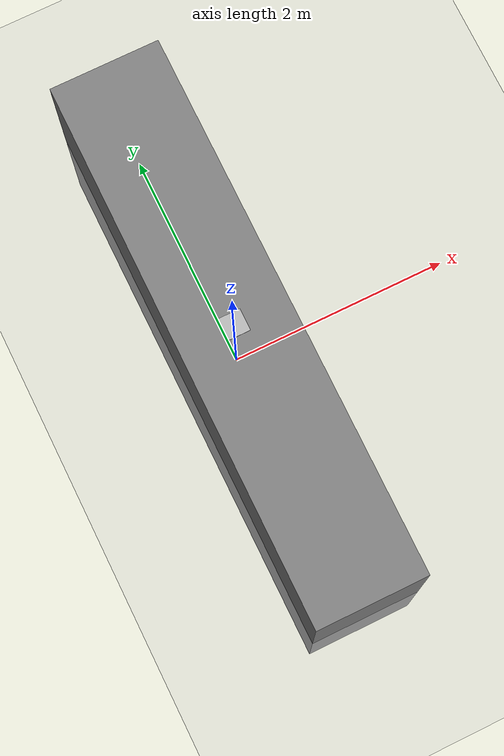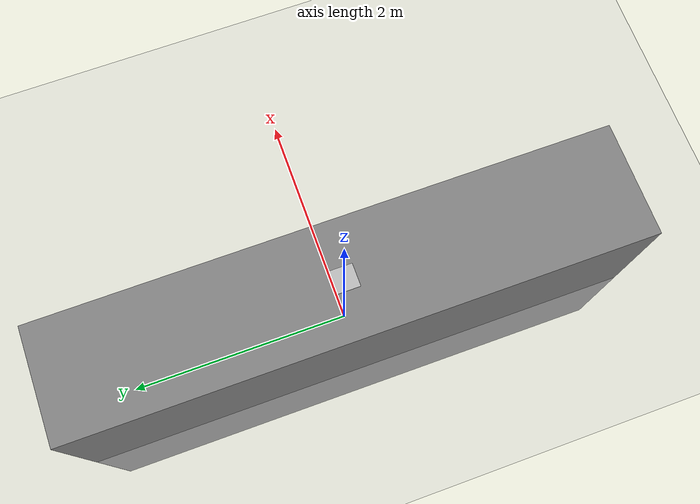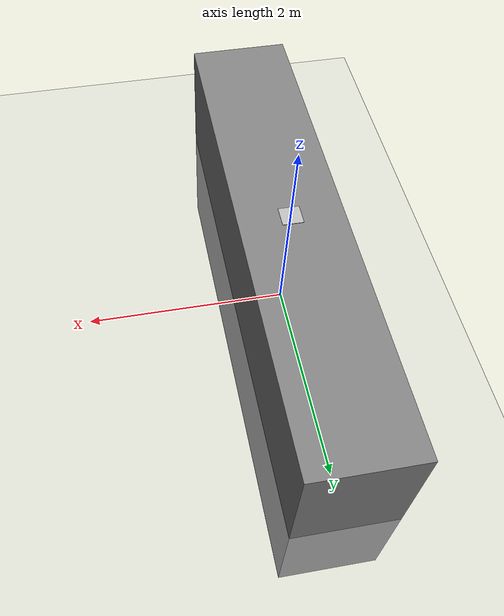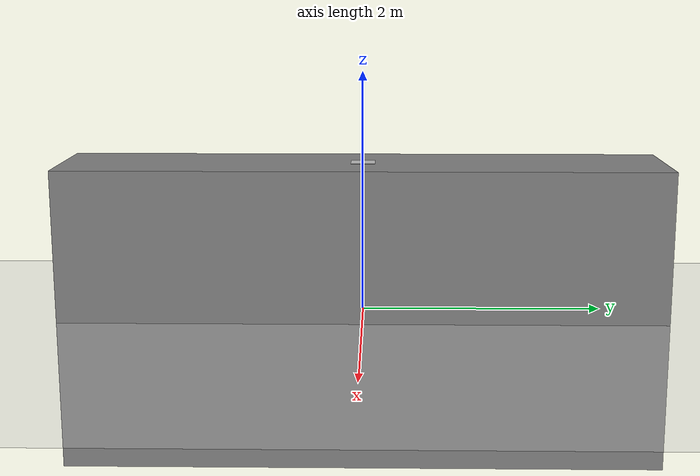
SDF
<?xml version="1.0"?>
<sdf version="1.6">
  <world name="aruco_world">
    <include>
      <uri>model://sun</uri>
    </include>
    <include>
      <uri>model://ground_plane</uri>
    </include>

    <model name="wall">
      <static>true</static>
      <link name="link">
        <collision name="collision">
          <geometry>
            <box>
              <size>1 5 2.5</size>
            </box>
          </geometry>
        </collision>
        <visual name="visual">
          <geometry>
            <box>
              <size>1 5 2.5</size>
            </box>
          </geometry>
          <material>
            <ambient>0.5 0.5 0.5 1</ambient>
            <diffuse>0.5 0.5 0.5 1</diffuse>
            <specular>0.1 0.1 0.1 1</specular>
          </material>
        </visual>
      </link>
    </model>

    <model name="aruco_tag">
      <static>true</static>
      <link name="link">
        <pose>0 0 1.25 0 0 0</pose> <!-- Position the ArUco tag at the center of the wall -->
        <visual>
          <geometry>
            <box>
              <size>0.2 0.2 0.01</size>
            </box>
          </geometry>
          <material>
            <texture>
              <filename>package://$(find camera_xacro)/textures/marker_0.png</filename>
            </texture>
          </material>
        </visual>
      </link>
    </model>

  </world>
</sdf>
